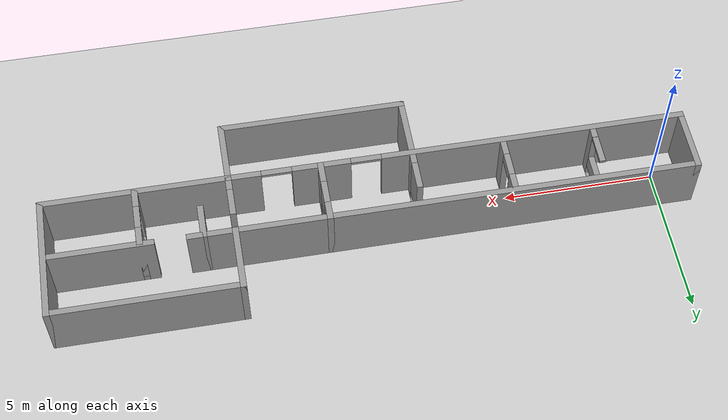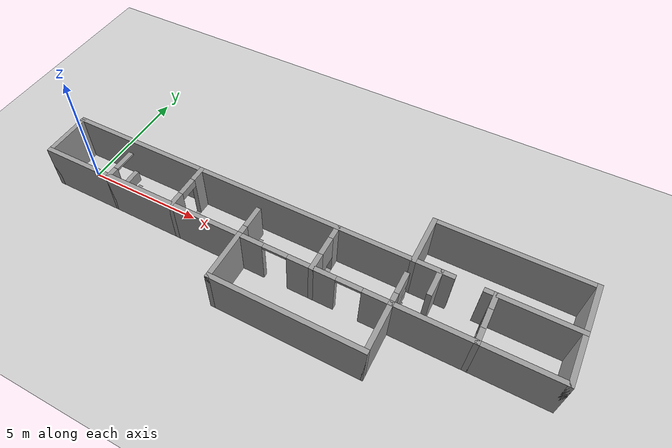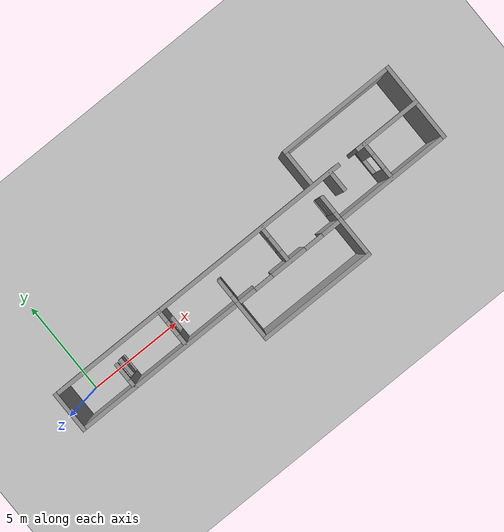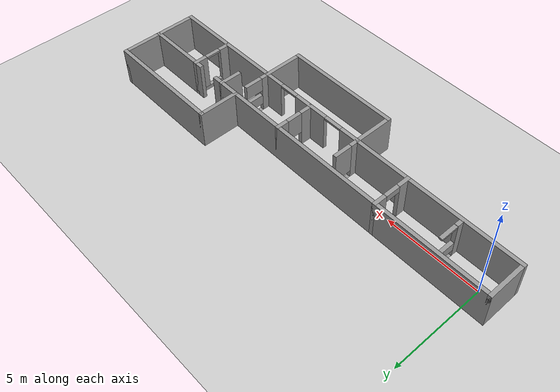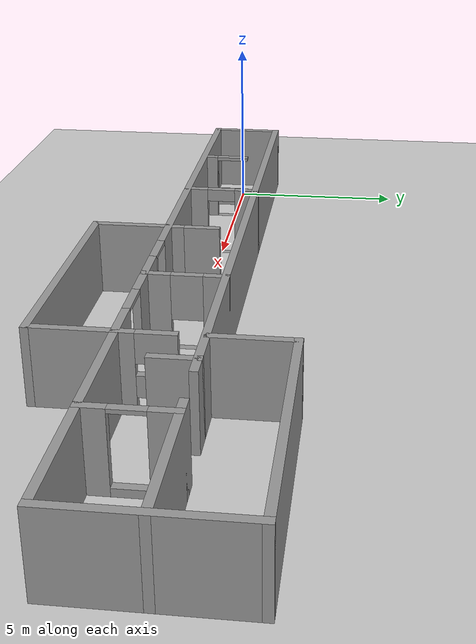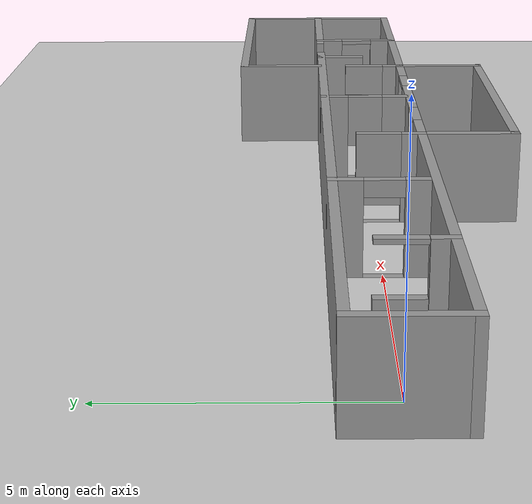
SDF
<sdf version="1.4">
 <world name="default">
  <light name="sun" type="directional">
   <pose>0 0 10 0 -0 0</pose>
   <diffuse>0.8 0.8 0.8 1</diffuse>
   <specular>0.2 0.2 0.2 1</specular>
   <attenuation>
    <range>1000</range>
    <constant>0.9</constant>
    <linear>0.01</linear>
    <quadratic>0.001</quadratic>
   </attenuation>
   <direction>-0.5 0.1 -0.9</direction>
  </light>
  <model name="ground_plane">
   <static>1</static>
   <link name="link">
    <collision name="collision">
     <geometry><plane><normal>0 0 1</normal><size>100 100</size></plane></geometry>
     <surface><friction><ode><mu>100</mu><mu2>50</mu2></ode></friction></surface>
    </collision>
    <visual name="visual">
     <cast_shadows>0</cast_shadows>
     <geometry><plane><normal>0 0 1</normal><size>100 100</size></plane></geometry>
     <material>
      <script><uri>file://media/materials/scripts/gazebo.material</uri><name>Gazebo/Grey</name></script>
     </material>
    </visual>
    <velocity_decay><linear>0</linear><angular>0</angular></velocity_decay>
   </link>
  </model>
  <physics type="ode">
   <max_step_size>0.001</max_step_size>
   <real_time_factor>1</real_time_factor>
   <real_time_update_rate>1000</real_time_update_rate>
   <gravity>0 0 -9.8</gravity>
  </physics>
  <scene><ambient>0.4 0.4 0.4 1</ambient><background>0.7 0.7 0.7 1</background><shadows>1</shadows></scene>
  <model name="pakour">
   <link name="Wall_0">
    <pose>11 0 0 0 -0 1.5708</pose>
    <visual name="Wall_0_Visual_0">
     <pose>-0.725278 0 1 0 -0 0</pose>
     <geometry><box><size>0.749444 0.2 2</size></box></geometry>
     <material>
      <script><uri>file://media/materials/scripts/gazebo.material</uri><name>Gazebo/Grey</name></script>
     </material>
    </visual>
    <collision name="Wall_0_Collision_0">
     <geometry><box><size>0.749444 0.2 2</size></box></geometry>
     <pose>-0.725278 0 1 0 -0 0</pose>
    </collision>
    <visual name="Wall_0_Visual_1">
     <pose>0.774722 0 1 0 -0 0</pose>
     <geometry><box><size>0.650556 0.2 2</size></box></geometry>
     <material>
      <script><uri>file://media/materials/scripts/gazebo.material</uri><name>Gazebo/Grey</name></script>
     </material>
    </visual>
    <collision name="Wall_0_Collision_1">
     <geometry><box><size>0.650556 0.2 2</size></box></geometry>
     <pose>0.774722 0 1 0 -0 0</pose>
    </collision>
    <visual name="Wall_0_Visual_2">
     <pose>0.049444 0 0 0 -0 0</pose>
     <geometry><box><size>0.8 0.2 0</size></box></geometry>
     <material>
      <script><uri>file://media/materials/scripts/gazebo.material</uri><name>Gazebo/Grey</name></script>
     </material>
    </visual>
    <collision name="Wall_0_Collision_2">
     <geometry><box><size>0.8 0.2 0</size></box></geometry>
     <pose>0.049444 0 0 0 -0 0</pose>
    </collision>
    <visual name="Wall_0_Visual_3">
     <pose>0.049444 0 1.4 0 -0 0</pose>
     <geometry><box><size>0.8 0.2 1.2</size></box></geometry>
     <material>
      <script><uri>file://media/materials/scripts/gazebo.material</uri><name>Gazebo/Grey</name></script>
     </material>
    </visual>
    <collision name="Wall_0_Collision_3">
     <geometry><box><size>0.8 0.2 1.2</size></box></geometry>
     <pose>0.049444 0 1.4 0 -0 0</pose>
    </collision>
    <velocity_decay><linear>0</linear><angular>0</angular></velocity_decay>
   </link>
   <link name="Wall_1">
    <pose>17 0 0 0 -0 1.5708</pose>
    <visual name="Wall_1_Visual_0">
     <pose>-0.758548 0 1 0 -0 0</pose>
     <geometry><box><size>0.682905 0.2 2</size></box></geometry>
     <material>
      <script><uri>file://media/materials/scripts/gazebo.material</uri><name>Gazebo/Grey</name></script>
     </material>
    </visual>
    <collision name="Wall_1_Collision_0">
     <geometry><box><size>0.682905 0.2 2</size></box></geometry>
     <pose>-0.758548 0 1 0 -0 0</pose>
    </collision>
    <visual name="Wall_1_Visual_1">
     <pose>0.341452 0 0.1 0 -0 0</pose>
     <geometry><box><size>1.5171 0.2 0.2</size></box></geometry>
     <material>
      <script><uri>file://media/materials/scripts/gazebo.material</uri><name>Gazebo/Grey</name></script>
     </material>
    </visual>
    <collision name="Wall_1_Collision_1">
     <geometry><box><size>1.5171 0.2 0.2</size></box></geometry>
     <pose>0.341452 0 0.1 0 -0 0</pose>
    </collision>
    <visual name="Wall_1_Visual_2">
     <pose>0.741452 0 1.1 0 -0 0</pose>
     <geometry><box><size>0.717095 0.2 1.8</size></box></geometry>
     <material>
      <script><uri>file://media/materials/scripts/gazebo.material</uri><name>Gazebo/Grey</name></script>
     </material>
    </visual>
    <collision name="Wall_1_Collision_2">
     <geometry><box><size>0.717095 0.2 1.8</size></box></geometry>
     <pose>0.741452 0 1.1 0 -0 0</pose>
    </collision>
    <visual name="Wall_1_Visual_3">
     <pose>-0.017095 0 1.95 0 -0 0</pose>
     <geometry><box><size>0.8 0.2 0.1</size></box></geometry>
     <material>
      <script><uri>file://media/materials/scripts/gazebo.material</uri><name>Gazebo/Grey</name></script>
     </material>
    </visual>
    <collision name="Wall_1_Collision_3">
     <geometry><box><size>0.8 0.2 0.1</size></box></geometry>
     <pose>-0.017095 0 1.95 0 -0 0</pose>
    </collision>
    <velocity_decay><linear>0</linear><angular>0</angular></velocity_decay>
   </link>
   <link name="Wall_2">
    <collision name="Wall_2_Collision">
     <geometry><box><size>6.2 0.2 2</size></box></geometry>
     <pose>0 0 1 0 -0 0</pose>
    </collision>
    <visual name="Wall_2_Visual">
     <pose>0 0 1 0 -0 0</pose>
     <geometry><box><size>6.2 0.2 2</size></box></geometry>
     <material>
      <script><uri>file://media/materials/scripts/gazebo.material</uri><name>Gazebo/Grey</name></script>
     </material>
    </visual>
    <velocity_decay><linear>0</linear><angular>0</angular></velocity_decay>
    <pose>11 -3 0 0 -0 0</pose>
   </link>
   <link name="Wall_3">
    <collision name="Wall_3_Collision">
     <geometry><box><size>1.2 0.2 2</size></box></geometry>
     <pose>0 0 1 0 -0 0</pose>
    </collision>
    <visual name="Wall_3_Visual">
     <pose>0 0 1 0 -0 0</pose>
     <geometry><box><size>1.2 0.2 2</size></box></geometry>
     <material>
      <script><uri>file://media/materials/scripts/gazebo.material</uri><name>Gazebo/Grey</name></script>
     </material>
    </visual>
    <velocity_decay><linear>0</linear><angular>0</angular></velocity_decay>
    <pose>15 0.5 0 0 0 -1.5708</pose>
   </link>
   <link name="Wall_4">
    <collision name="Wall_4_Collision">
     <geometry><box><size>2.2 0.2 2</size></box></geometry>
     <pose>0 0 1 0 -0 0</pose>
    </collision>
    <visual name="Wall_4_Visual">
     <pose>0 0 1 0 -0 0</pose>
     <geometry><box><size>2.2 0.2 2</size></box></geometry>
     <material>
      <script><uri>file://media/materials/scripts/gazebo.material</uri><name>Gazebo/Grey</name></script>
     </material>
    </visual>
    <velocity_decay><linear>0</linear><angular>0</angular></velocity_decay>
    <pose>-1 0 0 0 -0 1.5708</pose>
   </link>
   <link name="Wall_5">
    <pose>9.5 1 0 0 -0 0</pose>
    <visual name="Wall_5_Visual_0">
     <pose>-2.27619 0 1 0 -0 0</pose>
     <geometry><box><size>16.6476 0.2 2</size></box></geometry>
     <material>
      <script><uri>file://media/materials/scripts/gazebo.material</uri><name>Gazebo/Grey</name></script>
     </material>
    </visual>
    <collision name="Wall_5_Collision_0">
     <geometry><box><size>16.6476 0.2 2</size></box></geometry>
     <pose>-2.27619 0 1 0 -0 0</pose>
    </collision>
    <visual name="Wall_5_Visual_1">
     <pose>8.82381 0 1 0 -0 0</pose>
     <geometry><box><size>3.55239 0.2 2</size></box></geometry>
     <material>
      <script><uri>file://media/materials/scripts/gazebo.material</uri><name>Gazebo/Grey</name></script>
     </material>
    </visual>
    <collision name="Wall_5_Collision_1">
     <geometry><box><size>3.55239 0.2 2</size></box></geometry>
     <pose>8.82381 0 1 0 -0 0</pose>
    </collision>
    <velocity_decay><linear>0</linear><angular>0</angular></velocity_decay>
   </link>
   <link name="Wall_6">
    <collision name="Wall_6_Collision">
     <geometry><box><size>4.2 0.2 2</size></box></geometry>
     <pose>0 0 1 0 -0 0</pose>
    </collision>
    <visual name="Wall_6_Visual">
     <pose>0 0 1 0 -0 0</pose>
     <geometry><box><size>4.2 0.2 2</size></box></geometry>
     <material>
      <script><uri>file://media/materials/scripts/gazebo.material</uri><name>Gazebo/Grey</name></script>
     </material>
    </visual>
    <velocity_decay><linear>0</linear><angular>0</angular></velocity_decay>
    <pose>20 1 0 0 -0 1.5708</pose>
   </link>
   <link name="Wall_7">
    <collision name="Wall_7_Collision">
     <geometry><box><size>6.2 0.2 2</size></box></geometry>
     <pose>0 0 1 0 -0 0</pose>
    </collision>
    <visual name="Wall_7_Visual">
     <pose>0 0 1 0 -0 0</pose>
     <geometry><box><size>6.2 0.2 2</size></box></geometry>
     <material>
      <script><uri>file://media/materials/scripts/gazebo.material</uri><name>Gazebo/Grey</name></script>
     </material>
    </visual>
    <velocity_decay><linear>0</linear><angular>0</angular></velocity_decay>
    <pose>17 3 0 0 -0 0</pose>
   </link>
   <link name="Wall_8">
    <pose>5 0 0 0 -0 1.5708</pose>
    <visual name="Wall_8_Visual_0">
     <pose>-0.751878 0 1 0 -0 0</pose>
     <geometry><box><size>0.696244 0.2 2</size></box></geometry>
     <material>
      <script><uri>file://media/materials/scripts/gazebo.material</uri><name>Gazebo/Grey</name></script>
     </material>
    </visual>
    <collision name="Wall_8_Collision_0">
     <geometry><box><size>0.696244 0.2 2</size></box></geometry>
     <pose>-0.751878 0 1 0 -0 0</pose>
    </collision>
    <visual name="Wall_8_Visual_1">
     <pose>0.748122 0 1 0 -0 0</pose>
     <geometry><box><size>0.703756 0.2 2</size></box></geometry>
     <material>
      <script><uri>file://media/materials/scripts/gazebo.material</uri><name>Gazebo/Grey</name></script>
     </material>
    </visual>
    <collision name="Wall_8_Collision_1">
     <geometry><box><size>0.703756 0.2 2</size></box></geometry>
     <pose>0.748122 0 1 0 -0 0</pose>
    </collision>
    <visual name="Wall_8_Visual_2">
     <pose>-0.003756 0 0 0 -0 0</pose>
     <geometry><box><size>0.8 0.2 0</size></box></geometry>
     <material>
      <script><uri>file://media/materials/scripts/gazebo.material</uri><name>Gazebo/Grey</name></script>
     </material>
    </visual>
    <collision name="Wall_8_Collision_2">
     <geometry><box><size>0.8 0.2 0</size></box></geometry>
     <pose>-0.003756 0 0 0 -0 0</pose>
    </collision>
    <visual name="Wall_8_Visual_3">
     <pose>-0.003756 0 1.825 0 -0 0</pose>
     <geometry><box><size>0.8 0.2 0.35</size></box></geometry>
     <material>
      <script><uri>file://media/materials/scripts/gazebo.material</uri><name>Gazebo/Grey</name></script>
     </material>
    </visual>
    <collision name="Wall_8_Collision_3">
     <geometry><box><size>0.8 0.2 0.35</size></box></geometry>
     <pose>-0.003756 0 1.825 0 -0 0</pose>
    </collision>
    <velocity_decay><linear>0</linear><angular>0</angular></velocity_decay>
   </link>
   <link name="Wall_9">
    <collision name="Wall_9_Collision">
     <geometry><box><size>2.2 0.2 2</size></box></geometry>
     <pose>0 0 1 0 -0 0</pose>
    </collision>
    <visual name="Wall_9_Visual">
     <pose>0 0 1 0 -0 0</pose>
     <geometry><box><size>2.2 0.2 2</size></box></geometry>
     <material>
      <script><uri>file://media/materials/scripts/gazebo.material</uri><name>Gazebo/Grey</name></script>
     </material>
    </visual>
    <velocity_decay><linear>0</linear><angular>0</angular></velocity_decay>
    <pose>8 -2 0 0 0 -1.5708</pose>
   </link>
   <link name="Wall_10">
    <collision name="Wall_10_Collision">
     <geometry><box><size>2.2 0.2 2</size></box></geometry>
     <pose>0 0 1 0 -0 0</pose>
    </collision>
    <visual name="Wall_10_Visual">
     <pose>0 0 1 0 -0 0</pose>
     <geometry><box><size>2.2 0.2 2</size></box></geometry>
     <material>
      <script><uri>file://media/materials/scripts/gazebo.material</uri><name>Gazebo/Grey</name></script>
     </material>
    </visual>
    <velocity_decay><linear>0</linear><angular>0</angular></velocity_decay>
    <pose>14 -2 0 0 0 -1.5708</pose>
   </link>
   <link name="Wall_11">
    <collision name="Wall_11_Collision">
     <geometry><box><size>2.2 0.2 2</size></box></geometry>
     <pose>0 0 1 0 -0 0</pose>
    </collision>
    <visual name="Wall_11_Visual">
     <pose>0 0 1 0 -0 0</pose>
     <geometry><box><size>2.2 0.2 2</size></box></geometry>
     <material>
      <script><uri>file://media/materials/scripts/gazebo.material</uri><name>Gazebo/Grey</name></script>
     </material>
    </visual>
    <velocity_decay><linear>0</linear><angular>0</angular></velocity_decay>
    <pose>14 2 0 0 -0 1.5708</pose>
   </link>
   <link name="Wall_12">
    <pose>2 -0.35 0 0 -0 1.5708</pose>
    <visual name="Wall_12_Visual_0">
     <pose>-0.48294 0 1 0 -0 0</pose>
     <geometry><box><size>0.534119 0.2 2</size></box></geometry>
     <material>
      <script><uri>file://media/materials/scripts/gazebo.material</uri><name>Gazebo/Grey</name></script>
     </material>
    </visual>
    <collision name="Wall_12_Collision_0">
     <geometry><box><size>0.534119 0.2 2</size></box></geometry>
     <pose>-0.48294 0 1 0 -0 0</pose>
    </collision>
    <visual name="Wall_12_Visual_1">
     <pose>0.26706 0 0 0 -0 0</pose>
     <geometry><box><size>0.965881 0.2 0</size></box></geometry>
     <material>
      <script><uri>file://media/materials/scripts/gazebo.material</uri><name>Gazebo/Grey</name></script>
     </material>
    </visual>
    <collision name="Wall_12_Collision_1">
     <geometry><box><size>0.965881 0.2 0</size></box></geometry>
     <pose>0.26706 0 0 0 -0 0</pose>
    </collision>
    <visual name="Wall_12_Visual_2">
     <pose>-0.211884 0 1.2 0 -0 0</pose>
     <geometry><box><size>0.007994 0.2 1.6</size></box></geometry>
     <material>
      <script><uri>file://media/materials/scripts/gazebo.material</uri><name>Gazebo/Grey</name></script>
     </material>
    </visual>
    <collision name="Wall_12_Collision_2">
     <geometry><box><size>0.007994 0.2 1.6</size></box></geometry>
     <pose>-0.211884 0 1.2 0 -0 0</pose>
    </collision>
    <visual name="Wall_12_Visual_3">
     <pose>0.271056 0 0.65 0 -0 0</pose>
     <geometry><box><size>0.957887 0.2 0.5</size></box></geometry>
     <material>
      <script><uri>file://media/materials/scripts/gazebo.material</uri><name>Gazebo/Grey</name></script>
     </material>
    </visual>
    <collision name="Wall_12_Collision_3">
     <geometry><box><size>0.957887 0.2 0.5</size></box></geometry>
     <pose>0.271056 0 0.65 0 -0 0</pose>
    </collision>
    <visual name="Wall_12_Visual_4">
     <pose>0.271056 0 1.95 0 -0 0</pose>
     <geometry><box><size>0.957887 0.2 0.1</size></box></geometry>
     <material>
      <script><uri>file://media/materials/scripts/gazebo.material</uri><name>Gazebo/Grey</name></script>
     </material>
    </visual>
    <collision name="Wall_12_Collision_4">
     <geometry><box><size>0.957887 0.2 0.1</size></box></geometry>
     <pose>0.271056 0 1.95 0 -0 0</pose>
    </collision>
    <velocity_decay><linear>0</linear><angular>0</angular></velocity_decay>
   </link>
   <link name="Wall_13">
    <pose>8 -0.35 0 0 -0 1.5708</pose>
    <visual name="Wall_13_Visual_0">
     <pose>-0.48294 0 1 0 -0 0</pose>
     <geometry><box><size>0.534119 0.2 2</size></box></geometry>
     <material>
      <script><uri>file://media/materials/scripts/gazebo.material</uri><name>Gazebo/Grey</name></script>
     </material>
    </visual>
    <collision name="Wall_13_Collision_0">
     <geometry><box><size>0.534119 0.2 2</size></box></geometry>
     <pose>-0.48294 0 1 0 -0 0</pose>
    </collision>
    <visual name="Wall_13_Visual_1">
     <pose>0.26706 0 0 0 -0 0</pose>
     <geometry><box><size>0.965881 0.2 0</size></box></geometry>
     <material>
      <script><uri>file://media/materials/scripts/gazebo.material</uri><name>Gazebo/Grey</name></script>
     </material>
    </visual>
    <collision name="Wall_13_Collision_1">
     <geometry><box><size>0.965881 0.2 0</size></box></geometry>
     <pose>0.26706 0 0 0 -0 0</pose>
    </collision>
    <visual name="Wall_13_Visual_2">
     <pose>0.26706 0 1.2 0 -0 0</pose>
     <geometry><box><size>0.965881 0.2 1.6</size></box></geometry>
     <material>
      <script><uri>file://media/materials/scripts/gazebo.material</uri><name>Gazebo/Grey</name></script>
     </material>
    </visual>
    <collision name="Wall_13_Collision_2">
     <geometry><box><size>0.965881 0.2 1.6</size></box></geometry>
     <pose>0.26706 0 1.2 0 -0 0</pose>
    </collision>
    <velocity_decay><linear>0</linear><angular>0</angular></velocity_decay>
   </link>
   <link name="Wall_14">
    <pose>14 -0.35 0 0 -0 1.5708</pose>
    <visual name="Wall_14_Visual_0">
     <pose>-0.47779 0 1 0 -0 0</pose>
     <geometry><box><size>0.54442 0.2 2</size></box></geometry>
     <material>
      <script><uri>file://media/materials/scripts/gazebo.material</uri><name>Gazebo/Grey</name></script>
     </material>
    </visual>
    <collision name="Wall_14_Collision_0">
     <geometry><box><size>0.54442 0.2 2</size></box></geometry>
     <pose>-0.47779 0 1 0 -0 0</pose>
    </collision>
    <visual name="Wall_14_Visual_1">
     <pose>0.27221 0 0 0 -0 0</pose>
     <geometry><box><size>0.95558 0.2 0</size></box></geometry>
     <material>
      <script><uri>file://media/materials/scripts/gazebo.material</uri><name>Gazebo/Grey</name></script>
     </material>
    </visual>
    <collision name="Wall_14_Collision_1">
     <geometry><box><size>0.95558 0.2 0</size></box></geometry>
     <pose>0.27221 0 0 0 -0 0</pose>
    </collision>
    <visual name="Wall_14_Visual_2">
     <pose>0.27221 0 0.675 0 -0 0</pose>
     <geometry><box><size>0.95558 0.2 0.55</size></box></geometry>
     <material>
      <script><uri>file://media/materials/scripts/gazebo.material</uri><name>Gazebo/Grey</name></script>
     </material>
    </visual>
    <collision name="Wall_14_Collision_2">
     <geometry><box><size>0.95558 0.2 0.55</size></box></geometry>
     <pose>0.27221 0 0.675 0 -0 0</pose>
    </collision>
    <visual name="Wall_14_Visual_3">
     <pose>0.27221 0 1.625 0 -0 0</pose>
     <geometry><box><size>0.95558 0.2 0.75</size></box></geometry>
     <material>
      <script><uri>file://media/materials/scripts/gazebo.material</uri><name>Gazebo/Grey</name></script>
     </material>
    </visual>
    <collision name="Wall_14_Collision_3">
     <geometry><box><size>0.95558 0.2 0.75</size></box></geometry>
     <pose>0.27221 0 1.625 0 -0 0</pose>
    </collision>
    <velocity_decay><linear>0</linear><angular>0</angular></velocity_decay>
   </link>
   <link name="Wall_15">
    <pose>9.5 -1 0 0 -0 0</pose>
    <visual name="Wall_15_Visual_0">
     <pose>-5.54336 0 1 0 -0 0</pose>
     <geometry><box><size>10.1133 0.2 2</size></box></geometry>
     <material>
      <script><uri>file://media/materials/scripts/gazebo.material</uri><name>Gazebo/Grey</name></script>
     </material>
    </visual>
    <collision name="Wall_15_Collision_0">
     <geometry><box><size>10.1133 0.2 2</size></box></geometry>
     <pose>-5.54336 0 1 0 -0 0</pose>
    </collision>
    <visual name="Wall_15_Visual_1">
     <pose>1.4763 0 1 0 -0 0</pose>
     <geometry><box><size>1.92602 0.2 2</size></box></geometry>
     <material>
      <script><uri>file://media/materials/scripts/gazebo.material</uri><name>Gazebo/Grey</name></script>
     </material>
    </visual>
    <collision name="Wall_15_Collision_1">
     <geometry><box><size>1.92602 0.2 2</size></box></geometry>
     <pose>1.4763 0 1 0 -0 0</pose>
    </collision>
    <visual name="Wall_15_Visual_2">
     <pose>7.01966 0 1 0 -0 0</pose>
     <geometry><box><size>7.16069 0.2 2</size></box></geometry>
     <material>
      <script><uri>file://media/materials/scripts/gazebo.material</uri><name>Gazebo/Grey</name></script>
     </material>
    </visual>
    <collision name="Wall_15_Collision_2">
     <geometry><box><size>7.16069 0.2 2</size></box></geometry>
     <pose>7.01966 0 1 0 -0 0</pose>
    </collision>
    <visual name="Wall_15_Visual_3">
     <pose>0.013288 0 1.95 0 -0 0</pose>
     <geometry><box><size>1 0.2 0.1</size></box></geometry>
     <material>
      <script><uri>file://media/materials/scripts/gazebo.material</uri><name>Gazebo/Grey</name></script>
     </material>
    </visual>
    <collision name="Wall_15_Collision_3">
     <geometry><box><size>1 0.2 0.1</size></box></geometry>
     <pose>0.013288 0 1.95 0 -0 0</pose>
    </collision>
    <visual name="Wall_15_Visual_4">
     <pose>2.93931 0 1.95 0 -0 0</pose>
     <geometry><box><size>1 0.2 0.1</size></box></geometry>
     <material>
      <script><uri>file://media/materials/scripts/gazebo.material</uri><name>Gazebo/Grey</name></script>
     </material>
    </visual>
    <collision name="Wall_15_Collision_4">
     <geometry><box><size>1 0.2 0.1</size></box></geometry>
     <pose>2.93931 0 1.95 0 -0 0</pose>
    </collision>
    <velocity_decay><linear>0</linear><angular>0</angular></velocity_decay>
   </link>
   <static>1</static>
  </model>
 </world>
</sdf>
